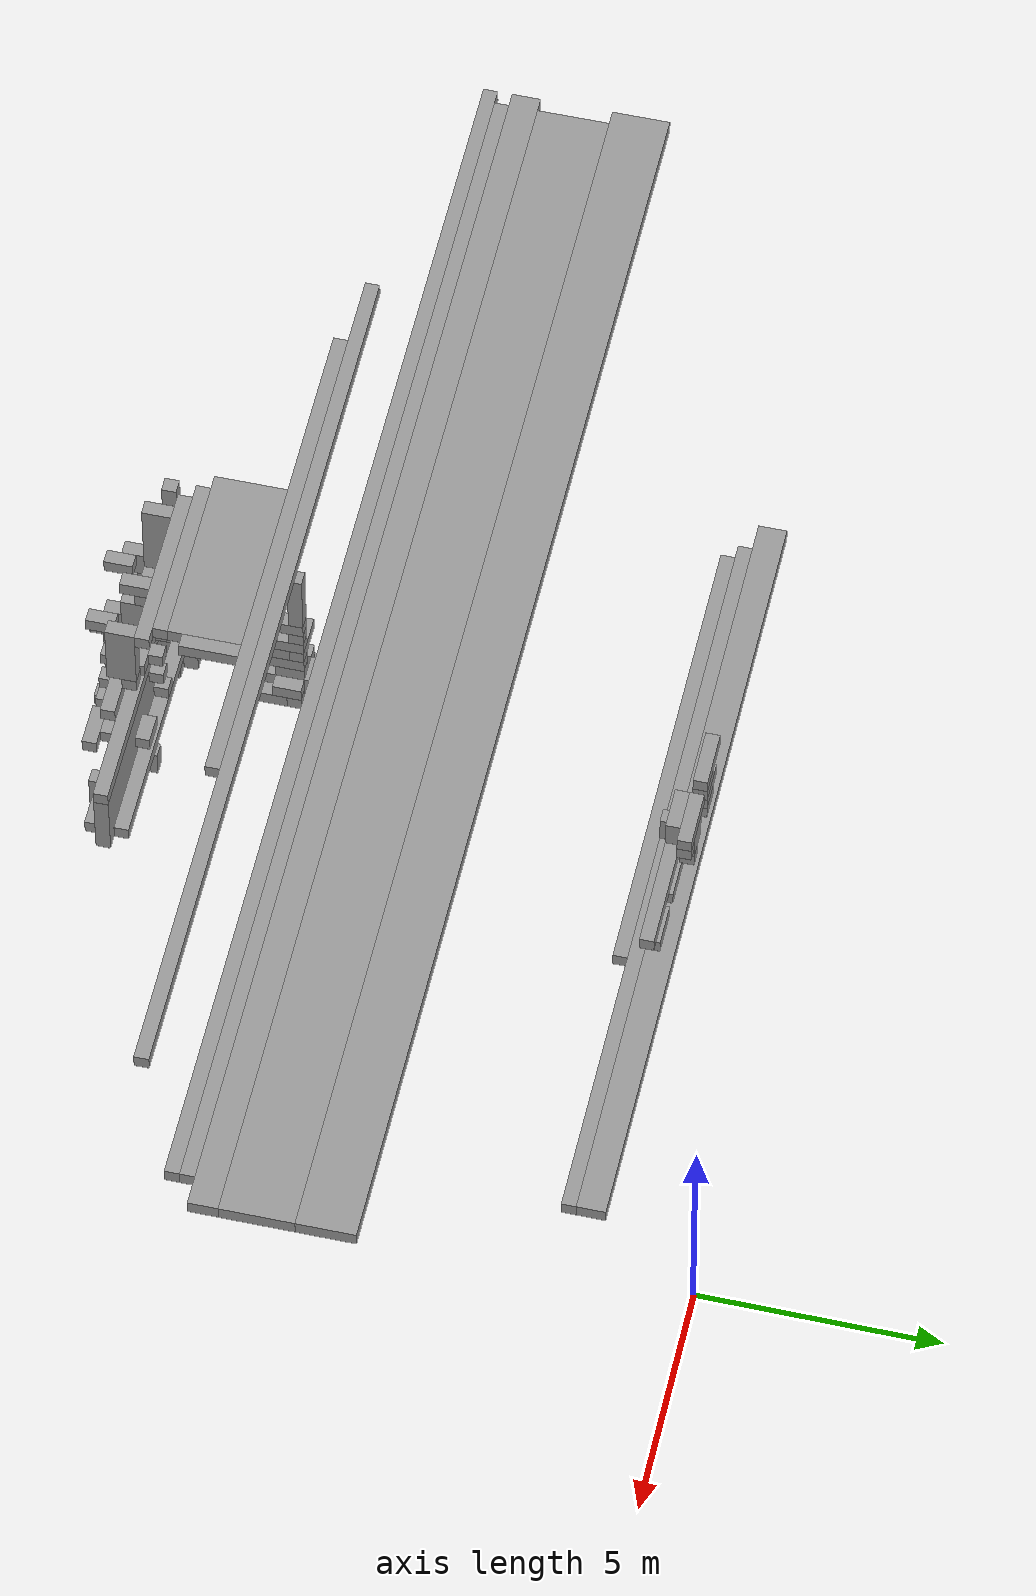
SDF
<sdf version="1.6">
 <world name="bt_world">
  <include><uri>model://sun</uri></include>
  <model name="obstacle_474">
   <static>true</static>
   <pose>-9.9 -9.45 6.45 0 0 0</pose>
   <link name="link">
    <collision name="collision"><geometry><box><size>27.0 0.3 0.3</size></box></geometry></collision>
    <visual name="visual">
     <geometry><box><size>27.0 0.3 0.3</size></box></geometry>
     <material><ambient>0.5 0.5 0.5 1</ambient><diffuse>0.6 0.6 0.6 1</diffuse></material>
    </visual>
   </link>
  </model>
  <model name="obstacle_475">
   <static>true</static>
   <pose>-9.6 -8.7 6.45 0 0 0</pose>
   <link name="link">
    <collision name="collision">
     <geometry><box><size>27.599999999999998 0.6 0.3</size></box></geometry>
    </collision>
    <visual name="visual">
     <geometry><box><size>27.599999999999998 0.6 0.3</size></box></geometry>
     <material><ambient>0.5 0.5 0.5 1</ambient><diffuse>0.6 0.6 0.6 1</diffuse></material>
    </visual>
   </link>
  </model>
  <model name="obstacle_476">
   <static>true</static>
   <pose>-9.6 -6.3 6.45 0 0 0</pose>
   <link name="link">
    <collision name="collision">
     <geometry><box><size>27.599999999999998 1.2 0.3</size></box></geometry>
    </collision>
    <visual name="visual">
     <geometry><box><size>27.599999999999998 1.2 0.3</size></box></geometry>
     <material><ambient>0.5 0.5 0.5 1</ambient><diffuse>0.6 0.6 0.6 1</diffuse></material>
    </visual>
   </link>
  </model>
  <model name="obstacle_508">
   <static>true</static>
   <pose>-9.75 -9.15 6.45 0 0 0</pose>
   <link name="link">
    <collision name="collision"><geometry><box><size>26.7 0.3 0.3</size></box></geometry></collision>
    <visual name="visual">
     <geometry><box><size>26.7 0.3 0.3</size></box></geometry>
     <material><ambient>0.5 0.5 0.5 1</ambient><diffuse>0.6 0.6 0.6 1</diffuse></material>
    </visual>
   </link>
  </model>
  <model name="obstacle_509">
   <static>true</static>
   <pose>-9.45 -7.6499999999999995 6.45 0 0 0</pose>
   <link name="link">
    <collision name="collision"><geometry><box><size>27.3 1.5 0.3</size></box></geometry></collision>
    <visual name="visual">
     <geometry><box><size>27.3 1.5 0.3</size></box></geometry>
     <material><ambient>0.5 0.5 0.5 1</ambient><diffuse>0.6 0.6 0.6 1</diffuse></material>
    </visual>
   </link>
  </model>
  <model name="obstacle_1035">
   <static>true</static>
   <pose>-10.049999999999999 -2.4 -0.15 0 0 0</pose>
   <link name="link">
    <collision name="collision">
     <geometry><box><size>17.099999999999998 0.6 0.3</size></box></geometry>
    </collision>
    <visual name="visual">
     <geometry><box><size>17.099999999999998 0.6 0.3</size></box></geometry>
     <material><ambient>0.5 0.5 0.5 1</ambient><diffuse>0.6 0.6 0.6 1</diffuse></material>
    </visual>
   </link>
  </model>
  <model name="obstacle_1073">
   <static>true</static>
   <pose>-8.4 -10.65 6.45 0 0 0</pose>
   <link name="link">
    <collision name="collision"><geometry><box><size>19.2 0.3 0.3</size></box></geometry></collision>
    <visual name="visual">
     <geometry><box><size>19.2 0.3 0.3</size></box></geometry>
     <material><ambient>0.5 0.5 0.5 1</ambient><diffuse>0.6 0.6 0.6 1</diffuse></material>
    </visual>
   </link>
  </model>
  <model name="obstacle_1074">
   <static>true</static>
   <pose>-9.75 -2.85 -0.15 0 0 0</pose>
   <link name="link">
    <collision name="collision"><geometry><box><size>16.5 0.3 0.3</size></box></geometry></collision>
    <visual name="visual">
     <geometry><box><size>16.5 0.3 0.3</size></box></geometry>
     <material><ambient>0.5 0.5 0.5 1</ambient><diffuse>0.6 0.6 0.6 1</diffuse></material>
    </visual>
   </link>
  </model>
  <model name="obstacle_1093">
   <static>true</static>
   <pose>-12.6 -3.15 -0.15 0 0 0</pose>
   <link name="link">
    <collision name="collision"><geometry><box><size>10.2 0.3 0.3</size></box></geometry></collision>
    <visual name="visual">
     <geometry><box><size>10.2 0.3 0.3</size></box></geometry>
     <material><ambient>0.5 0.5 0.5 1</ambient><diffuse>0.6 0.6 0.6 1</diffuse></material>
    </visual>
   </link>
  </model>
  <model name="obstacle_1207">
   <static>true</static>
   <pose>-11.1 -10.95 6.45 0 0 0</pose>
   <link name="link">
    <collision name="collision">
     <geometry><box><size>10.799999999999999 0.3 0.3</size></box></geometry>
    </collision>
    <visual name="visual">
     <geometry><box><size>10.799999999999999 0.3 0.3</size></box></geometry>
     <material><ambient>0.5 0.5 0.5 1</ambient><diffuse>0.6 0.6 0.6 1</diffuse></material>
    </visual>
   </link>
  </model>
  <model name="obstacle_1505">
   <static>true</static>
   <pose>-13.2 -14.25 1.05 0 0 0</pose>
   <link name="link">
    <collision name="collision"><geometry><box><size>0.6 0.3 0.3</size></box></geometry></collision>
    <visual name="visual">
     <geometry><box><size>0.6 0.3 0.3</size></box></geometry>
     <material><ambient>0.5 0.5 0.5 1</ambient><diffuse>0.6 0.6 0.6 1</diffuse></material>
    </visual>
   </link>
  </model>
  <model name="obstacle_1506">
   <static>true</static>
   <pose>-13.35 -13.95 1.05 0 0 0</pose>
   <link name="link">
    <collision name="collision"><geometry><box><size>0.3 0.3 0.3</size></box></geometry></collision>
    <visual name="visual">
     <geometry><box><size>0.3 0.3 0.3</size></box></geometry>
     <material><ambient>0.5 0.5 0.5 1</ambient><diffuse>0.6 0.6 0.6 1</diffuse></material>
    </visual>
   </link>
  </model>
  <model name="obstacle_1524">
   <static>true</static>
   <pose>-12.75 -14.399999999999999 0.15 0 0 0</pose>
   <link name="link">
    <collision name="collision">
     <geometry><box><size>0.8999999999999999 0.6 0.3</size></box></geometry>
    </collision>
    <visual name="visual">
     <geometry><box><size>0.8999999999999999 0.6 0.3</size></box></geometry>
     <material><ambient>0.5 0.5 0.5 1</ambient><diffuse>0.6 0.6 0.6 1</diffuse></material>
    </visual>
   </link>
  </model>
  <model name="obstacle_1525">
   <static>true</static>
   <pose>-12.9 -14.1 0.44999999999999996 0 0 0</pose>
   <link name="link">
    <collision name="collision"><geometry><box><size>0.6 1.2 0.3</size></box></geometry></collision>
    <visual name="visual">
     <geometry><box><size>0.6 1.2 0.3</size></box></geometry>
     <material><ambient>0.5 0.5 0.5 1</ambient><diffuse>0.6 0.6 0.6 1</diffuse></material>
    </visual>
   </link>
  </model>
  <model name="obstacle_1526">
   <static>true</static>
   <pose>-13.049999999999999 -14.399999999999999 0.75 0 0 0</pose>
   <link name="link">
    <collision name="collision"><geometry><box><size>0.3 0.6 0.3</size></box></geometry></collision>
    <visual name="visual">
     <geometry><box><size>0.3 0.6 0.3</size></box></geometry>
     <material><ambient>0.5 0.5 0.5 1</ambient><diffuse>0.6 0.6 0.6 1</diffuse></material>
    </visual>
   </link>
  </model>
  <model name="obstacle_1527">
   <static>true</static>
   <pose>-13.049999999999999 -14.549999999999999 1.5 0 0 0</pose>
   <link name="link">
    <collision name="collision"><geometry><box><size>0.3 0.3 1.2</size></box></geometry></collision>
    <visual name="visual">
     <geometry><box><size>0.3 0.3 1.2</size></box></geometry>
     <material><ambient>0.5 0.5 0.5 1</ambient><diffuse>0.6 0.6 0.6 1</diffuse></material>
    </visual>
   </link>
  </model>
  <model name="obstacle_1528">
   <static>true</static>
   <pose>-13.049999999999999 -14.399999999999999 2.6999999999999997 0 0 0</pose>
   <link name="link">
    <collision name="collision"><geometry><box><size>0.3 0.6 0.6</size></box></geometry></collision>
    <visual name="visual">
     <geometry><box><size>0.3 0.6 0.6</size></box></geometry>
     <material><ambient>0.5 0.5 0.5 1</ambient><diffuse>0.6 0.6 0.6 1</diffuse></material>
    </visual>
   </link>
  </model>
  <model name="obstacle_1529">
   <static>true</static>
   <pose>-12.75 -14.25 -0.15 0 0 0</pose>
   <link name="link">
    <collision name="collision">
     <geometry><box><size>0.8999999999999999 0.3 0.3</size></box></geometry>
    </collision>
    <visual name="visual">
     <geometry><box><size>0.8999999999999999 0.3 0.3</size></box></geometry>
     <material><ambient>0.5 0.5 0.5 1</ambient><diffuse>0.6 0.6 0.6 1</diffuse></material>
    </visual>
   </link>
  </model>
  <model name="obstacle_1530">
   <static>true</static>
   <pose>-13.049999999999999 -14.25 1.7999999999999998 0 0 0</pose>
   <link name="link">
    <collision name="collision"><geometry><box><size>0.3 0.3 1.2</size></box></geometry></collision>
    <visual name="visual">
     <geometry><box><size>0.3 0.3 1.2</size></box></geometry>
     <material><ambient>0.5 0.5 0.5 1</ambient><diffuse>0.6 0.6 0.6 1</diffuse></material>
    </visual>
   </link>
  </model>
  <model name="obstacle_1531">
   <static>true</static>
   <pose>-12.9 -13.799999999999999 0.0 0 0 0</pose>
   <link name="link">
    <collision name="collision"><geometry><box><size>0.6 0.6 0.6</size></box></geometry></collision>
    <visual name="visual">
     <geometry><box><size>0.6 0.6 0.6</size></box></geometry>
     <material><ambient>0.5 0.5 0.5 1</ambient><diffuse>0.6 0.6 0.6 1</diffuse></material>
    </visual>
   </link>
  </model>
  <model name="obstacle_1532">
   <static>true</static>
   <pose>-13.049999999999999 -13.65 2.25 0 0 0</pose>
   <link name="link">
    <collision name="collision">
     <geometry><box><size>0.3 0.8999999999999999 0.3</size></box></geometry>
    </collision>
    <visual name="visual">
     <geometry><box><size>0.3 0.8999999999999999 0.3</size></box></geometry>
     <material><ambient>0.5 0.5 0.5 1</ambient><diffuse>0.6 0.6 0.6 1</diffuse></material>
    </visual>
   </link>
  </model>
  <model name="obstacle_1533">
   <static>true</static>
   <pose>-12.9 -13.65 -0.44999999999999996 0 0 0</pose>
   <link name="link">
    <collision name="collision"><geometry><box><size>0.6 0.3 0.3</size></box></geometry></collision>
    <visual name="visual">
     <geometry><box><size>0.6 0.3 0.3</size></box></geometry>
     <material><ambient>0.5 0.5 0.5 1</ambient><diffuse>0.6 0.6 0.6 1</diffuse></material>
    </visual>
   </link>
  </model>
  <model name="obstacle_1534">
   <static>true</static>
   <pose>-12.9 -13.65 0.75 0 0 0</pose>
   <link name="link">
    <collision name="collision"><geometry><box><size>0.6 0.3 0.3</size></box></geometry></collision>
    <visual name="visual">
     <geometry><box><size>0.6 0.3 0.3</size></box></geometry>
     <material><ambient>0.5 0.5 0.5 1</ambient><diffuse>0.6 0.6 0.6 1</diffuse></material>
    </visual>
   </link>
  </model>
  <model name="obstacle_1535">
   <static>true</static>
   <pose>-13.049999999999999 -13.5 4.6499999999999995 0 0 0</pose>
   <link name="link">
    <collision name="collision"><geometry><box><size>0.3 0.6 0.3</size></box></geometry></collision>
    <visual name="visual">
     <geometry><box><size>0.3 0.6 0.3</size></box></geometry>
     <material><ambient>0.5 0.5 0.5 1</ambient><diffuse>0.6 0.6 0.6 1</diffuse></material>
    </visual>
   </link>
  </model>
  <model name="obstacle_1536">
   <static>true</static>
   <pose>-13.049999999999999 -13.65 5.1 0 0 0</pose>
   <link name="link">
    <collision name="collision"><geometry><box><size>0.3 0.3 0.6</size></box></geometry></collision>
    <visual name="visual">
     <geometry><box><size>0.3 0.3 0.6</size></box></geometry>
     <material><ambient>0.5 0.5 0.5 1</ambient><diffuse>0.6 0.6 0.6 1</diffuse></material>
    </visual>
   </link>
  </model>
  <model name="obstacle_1537">
   <static>true</static>
   <pose>-13.049999999999999 -13.35 0.75 0 0 0</pose>
   <link name="link">
    <collision name="collision">
     <geometry><box><size>0.3 0.3 2.6999999999999997</size></box></geometry>
    </collision>
    <visual name="visual">
     <geometry><box><size>0.3 0.3 2.6999999999999997</size></box></geometry>
     <material><ambient>0.5 0.5 0.5 1</ambient><diffuse>0.6 0.6 0.6 1</diffuse></material>
    </visual>
   </link>
  </model>
  <model name="obstacle_1538">
   <static>true</static>
   <pose>-13.049999999999999 -13.35 2.6999999999999997 0 0 0</pose>
   <link name="link">
    <collision name="collision"><geometry><box><size>0.3 0.3 0.6</size></box></geometry></collision>
    <visual name="visual">
     <geometry><box><size>0.3 0.3 0.6</size></box></geometry>
     <material><ambient>0.5 0.5 0.5 1</ambient><diffuse>0.6 0.6 0.6 1</diffuse></material>
    </visual>
   </link>
  </model>
  <model name="obstacle_1539">
   <static>true</static>
   <pose>-9.75 -13.049999999999999 2.85 0 0 0</pose>
   <link name="link">
    <collision name="collision">
     <geometry><box><size>6.8999999999999995 0.3 0.3</size></box></geometry>
    </collision>
    <visual name="visual">
     <geometry><box><size>6.8999999999999995 0.3 0.3</size></box></geometry>
     <material><ambient>0.5 0.5 0.5 1</ambient><diffuse>0.6 0.6 0.6 1</diffuse></material>
    </visual>
   </link>
  </model>
  <model name="obstacle_1540">
   <static>true</static>
   <pose>-13.049999999999999 -13.049999999999999 3.75 0 0 0</pose>
   <link name="link">
    <collision name="collision"><geometry><box><size>0.3 0.3 1.5</size></box></geometry></collision>
    <visual name="visual">
     <geometry><box><size>0.3 0.3 1.5</size></box></geometry>
     <material><ambient>0.5 0.5 0.5 1</ambient><diffuse>0.6 0.6 0.6 1</diffuse></material>
    </visual>
   </link>
  </model>
  <model name="obstacle_1541">
   <static>true</static>
   <pose>-12.6 -10.95 0.15 0 0 0</pose>
   <link name="link">
    <collision name="collision"><geometry><box><size>1.2 0.3 0.3</size></box></geometry></collision>
    <visual name="visual">
     <geometry><box><size>1.2 0.3 0.3</size></box></geometry>
     <material><ambient>0.5 0.5 0.5 1</ambient><diffuse>0.6 0.6 0.6 1</diffuse></material>
    </visual>
   </link>
  </model>
  <model name="obstacle_1542">
   <static>true</static>
   <pose>-13.049999999999999 -10.95 0.44999999999999996 0 0 0</pose>
   <link name="link">
    <collision name="collision"><geometry><box><size>0.3 0.3 0.3</size></box></geometry></collision>
    <visual name="visual">
     <geometry><box><size>0.3 0.3 0.3</size></box></geometry>
     <material><ambient>0.5 0.5 0.5 1</ambient><diffuse>0.6 0.6 0.6 1</diffuse></material>
    </visual>
   </link>
  </model>
  <model name="obstacle_1543">
   <static>true</static>
   <pose>-12.75 -10.95 1.3499999999999999 0 0 0</pose>
   <link name="link">
    <collision name="collision">
     <geometry><box><size>0.8999999999999999 0.3 0.3</size></box></geometry>
    </collision>
    <visual name="visual">
     <geometry><box><size>0.8999999999999999 0.3 0.3</size></box></geometry>
     <material><ambient>0.5 0.5 0.5 1</ambient><diffuse>0.6 0.6 0.6 1</diffuse></material>
    </visual>
   </link>
  </model>
  <model name="obstacle_1552">
   <static>true</static>
   <pose>-12.6 -14.85 0.6 0 0 0</pose>
   <link name="link">
    <collision name="collision"><geometry><box><size>0.6 0.3 1.2</size></box></geometry></collision>
    <visual name="visual">
     <geometry><box><size>0.6 0.3 1.2</size></box></geometry>
     <material><ambient>0.5 0.5 0.5 1</ambient><diffuse>0.6 0.6 0.6 1</diffuse></material>
    </visual>
   </link>
  </model>
  <model name="obstacle_1553">
   <static>true</static>
   <pose>-12.75 -14.7 2.85 0 0 0</pose>
   <link name="link">
    <collision name="collision"><geometry><box><size>0.3 0.6 0.3</size></box></geometry></collision>
    <visual name="visual">
     <geometry><box><size>0.3 0.6 0.3</size></box></geometry>
     <material><ambient>0.5 0.5 0.5 1</ambient><diffuse>0.6 0.6 0.6 1</diffuse></material>
    </visual>
   </link>
  </model>
  <model name="obstacle_1554">
   <static>true</static>
   <pose>-12.0 -14.549999999999999 -0.15 0 0 0</pose>
   <link name="link">
    <collision name="collision">
     <geometry><box><size>1.7999999999999998 0.3 0.3</size></box></geometry>
    </collision>
    <visual name="visual">
     <geometry><box><size>1.7999999999999998 0.3 0.3</size></box></geometry>
     <material><ambient>0.5 0.5 0.5 1</ambient><diffuse>0.6 0.6 0.6 1</diffuse></material>
    </visual>
   </link>
  </model>
  <model name="obstacle_1555">
   <static>true</static>
   <pose>-9.45 -13.35 3.4499999999999997 0 0 0</pose>
   <link name="link">
    <collision name="collision">
     <geometry><box><size>6.8999999999999995 0.3 1.5</size></box></geometry>
    </collision>
    <visual name="visual">
     <geometry><box><size>6.8999999999999995 0.3 1.5</size></box></geometry>
     <material><ambient>0.5 0.5 0.5 1</ambient><diffuse>0.6 0.6 0.6 1</diffuse></material>
    </visual>
   </link>
  </model>
  <model name="obstacle_1556">
   <static>true</static>
   <pose>-12.75 -13.35 4.35 0 0 0</pose>
   <link name="link">
    <collision name="collision"><geometry><box><size>0.3 0.3 0.3</size></box></geometry></collision>
    <visual name="visual">
     <geometry><box><size>0.3 0.3 0.3</size></box></geometry>
     <material><ambient>0.5 0.5 0.5 1</ambient><diffuse>0.6 0.6 0.6 1</diffuse></material>
    </visual>
   </link>
  </model>
  <model name="obstacle_1557">
   <static>true</static>
   <pose>-12.75 -13.049999999999999 3.4499999999999997 0 0 0</pose>
   <link name="link">
    <collision name="collision"><geometry><box><size>0.3 0.3 0.3</size></box></geometry></collision>
    <visual name="visual">
     <geometry><box><size>0.3 0.3 0.3</size></box></geometry>
     <material><ambient>0.5 0.5 0.5 1</ambient><diffuse>0.6 0.6 0.6 1</diffuse></material>
    </visual>
   </link>
  </model>
  <model name="obstacle_1558">
   <static>true</static>
   <pose>-12.75 -13.049999999999999 4.05 0 0 0</pose>
   <link name="link">
    <collision name="collision"><geometry><box><size>0.3 0.3 0.3</size></box></geometry></collision>
    <visual name="visual">
     <geometry><box><size>0.3 0.3 0.3</size></box></geometry>
     <material><ambient>0.5 0.5 0.5 1</ambient><diffuse>0.6 0.6 0.6 1</diffuse></material>
    </visual>
   </link>
  </model>
  <model name="obstacle_1559">
   <static>true</static>
   <pose>-12.6 -10.65 0.3 0 0 0</pose>
   <link name="link">
    <collision name="collision"><geometry><box><size>0.6 0.3 0.6</size></box></geometry></collision>
    <visual name="visual">
     <geometry><box><size>0.6 0.3 0.6</size></box></geometry>
     <material><ambient>0.5 0.5 0.5 1</ambient><diffuse>0.6 0.6 0.6 1</diffuse></material>
    </visual>
   </link>
  </model>
  <model name="obstacle_1564">
   <static>true</static>
   <pose>-12.45 -15.149999999999999 1.05 0 0 0</pose>
   <link name="link">
    <collision name="collision"><geometry><box><size>0.3 0.3 0.3</size></box></geometry></collision>
    <visual name="visual">
     <geometry><box><size>0.3 0.3 0.3</size></box></geometry>
     <material><ambient>0.5 0.5 0.5 1</ambient><diffuse>0.6 0.6 0.6 1</diffuse></material>
    </visual>
   </link>
  </model>
  <model name="obstacle_1565">
   <static>true</static>
   <pose>-12.45 -14.85 -0.15 0 0 0</pose>
   <link name="link">
    <collision name="collision"><geometry><box><size>0.3 0.3 0.3</size></box></geometry></collision>
    <visual name="visual">
     <geometry><box><size>0.3 0.3 0.3</size></box></geometry>
     <material><ambient>0.5 0.5 0.5 1</ambient><diffuse>0.6 0.6 0.6 1</diffuse></material>
    </visual>
   </link>
  </model>
  <model name="obstacle_1566">
   <static>true</static>
   <pose>-12.45 -14.85 1.3499999999999999 0 0 0</pose>
   <link name="link">
    <collision name="collision"><geometry><box><size>0.3 0.3 0.3</size></box></geometry></collision>
    <visual name="visual">
     <geometry><box><size>0.3 0.3 0.3</size></box></geometry>
     <material><ambient>0.5 0.5 0.5 1</ambient><diffuse>0.6 0.6 0.6 1</diffuse></material>
    </visual>
   </link>
  </model>
  <model name="obstacle_1567">
   <static>true</static>
   <pose>-9.45 -13.65 2.85 0 0 0</pose>
   <link name="link">
    <collision name="collision"><geometry><box><size>6.3 0.3 0.3</size></box></geometry></collision>
    <visual name="visual">
     <geometry><box><size>6.3 0.3 0.3</size></box></geometry>
     <material><ambient>0.5 0.5 0.5 1</ambient><diffuse>0.6 0.6 0.6 1</diffuse></material>
    </visual>
   </link>
  </model>
  <model name="obstacle_1568">
   <static>true</static>
   <pose>-10.65 -11.85 6.45 0 0 0</pose>
   <link name="link">
    <collision name="collision"><geometry><box><size>3.9 1.5 0.3</size></box></geometry></collision>
    <visual name="visual">
     <geometry><box><size>3.9 1.5 0.3</size></box></geometry>
     <material><ambient>0.5 0.5 0.5 1</ambient><diffuse>0.6 0.6 0.6 1</diffuse></material>
    </visual>
   </link>
  </model>
  <model name="obstacle_1569">
   <static>true</static>
   <pose>-12.45 -11.7 0.15 0 0 0</pose>
   <link name="link">
    <collision name="collision"><geometry><box><size>0.3 1.2 0.3</size></box></geometry></collision>
    <visual name="visual">
     <geometry><box><size>0.3 1.2 0.3</size></box></geometry>
     <material><ambient>0.5 0.5 0.5 1</ambient><diffuse>0.6 0.6 0.6 1</diffuse></material>
    </visual>
   </link>
  </model>
  <model name="obstacle_1570">
   <static>true</static>
   <pose>-12.45 -11.25 0.44999999999999996 0 0 0</pose>
   <link name="link">
    <collision name="collision">
     <geometry><box><size>0.3 0.8999999999999999 0.3</size></box></geometry>
    </collision>
    <visual name="visual">
     <geometry><box><size>0.3 0.8999999999999999 0.3</size></box></geometry>
     <material><ambient>0.5 0.5 0.5 1</ambient><diffuse>0.6 0.6 0.6 1</diffuse></material>
    </visual>
   </link>
  </model>
  <model name="obstacle_1571">
   <static>true</static>
   <pose>-12.45 -11.25 1.05 0 0 0</pose>
   <link name="link">
    <collision name="collision">
     <geometry><box><size>0.3 0.8999999999999999 0.3</size></box></geometry>
    </collision>
    <visual name="visual">
     <geometry><box><size>0.3 0.8999999999999999 0.3</size></box></geometry>
     <material><ambient>0.5 0.5 0.5 1</ambient><diffuse>0.6 0.6 0.6 1</diffuse></material>
    </visual>
   </link>
  </model>
  <model name="obstacle_1572">
   <static>true</static>
   <pose>-12.45 -11.4 1.3499999999999999 0 0 0</pose>
   <link name="link">
    <collision name="collision"><geometry><box><size>0.3 0.6 0.3</size></box></geometry></collision>
    <visual name="visual">
     <geometry><box><size>0.3 0.6 0.3</size></box></geometry>
     <material><ambient>0.5 0.5 0.5 1</ambient><diffuse>0.6 0.6 0.6 1</diffuse></material>
    </visual>
   </link>
  </model>
  <model name="obstacle_1573">
   <static>true</static>
   <pose>-12.45 -11.1 0.75 0 0 0</pose>
   <link name="link">
    <collision name="collision"><geometry><box><size>0.3 0.6 0.3</size></box></geometry></collision>
    <visual name="visual">
     <geometry><box><size>0.3 0.6 0.3</size></box></geometry>
     <material><ambient>0.5 0.5 0.5 1</ambient><diffuse>0.6 0.6 0.6 1</diffuse></material>
    </visual>
   </link>
  </model>
  <model name="obstacle_1574">
   <static>true</static>
   <pose>-12.45 -11.1 1.65 0 0 0</pose>
   <link name="link">
    <collision name="collision"><geometry><box><size>0.3 0.6 0.3</size></box></geometry></collision>
    <visual name="visual">
     <geometry><box><size>0.3 0.6 0.3</size></box></geometry>
     <material><ambient>0.5 0.5 0.5 1</ambient><diffuse>0.6 0.6 0.6 1</diffuse></material>
    </visual>
   </link>
  </model>
  <model name="obstacle_1575">
   <static>true</static>
   <pose>-12.45 -11.1 2.25 0 0 0</pose>
   <link name="link">
    <collision name="collision"><geometry><box><size>0.3 0.6 0.3</size></box></geometry></collision>
    <visual name="visual">
     <geometry><box><size>0.3 0.6 0.3</size></box></geometry>
     <material><ambient>0.5 0.5 0.5 1</ambient><diffuse>0.6 0.6 0.6 1</diffuse></material>
    </visual>
   </link>
  </model>
  <model name="obstacle_1576">
   <static>true</static>
   <pose>-12.45 -10.95 1.95 0 0 0</pose>
   <link name="link">
    <collision name="collision"><geometry><box><size>0.3 0.3 0.3</size></box></geometry></collision>
    <visual name="visual">
     <geometry><box><size>0.3 0.3 0.3</size></box></geometry>
     <material><ambient>0.5 0.5 0.5 1</ambient><diffuse>0.6 0.6 0.6 1</diffuse></material>
    </visual>
   </link>
  </model>
  <model name="obstacle_1577">
   <static>true</static>
   <pose>-12.45 -10.95 3.15 0 0 0</pose>
   <link name="link">
    <collision name="collision"><geometry><box><size>0.3 0.3 1.5</size></box></geometry></collision>
    <visual name="visual">
     <geometry><box><size>0.3 0.3 1.5</size></box></geometry>
     <material><ambient>0.5 0.5 0.5 1</ambient><diffuse>0.6 0.6 0.6 1</diffuse></material>
    </visual>
   </link>
  </model>
  <model name="obstacle_1587">
   <static>true</static>
   <pose>-12.15 -14.85 0.44999999999999996 0 0 0</pose>
   <link name="link">
    <collision name="collision"><geometry><box><size>0.3 0.3 0.3</size></box></geometry></collision>
    <visual name="visual">
     <geometry><box><size>0.3 0.3 0.3</size></box></geometry>
     <material><ambient>0.5 0.5 0.5 1</ambient><diffuse>0.6 0.6 0.6 1</diffuse></material>
    </visual>
   </link>
  </model>
  <model name="obstacle_1588">
   <static>true</static>
   <pose>-10.5 -12.75 6.45 0 0 0</pose>
   <link name="link">
    <collision name="collision">
     <geometry><box><size>3.5999999999999996 0.3 0.3</size></box></geometry>
    </collision>
    <visual name="visual">
     <geometry><box><size>3.5999999999999996 0.3 0.3</size></box></geometry>
     <material><ambient>0.5 0.5 0.5 1</ambient><diffuse>0.6 0.6 0.6 1</diffuse></material>
    </visual>
   </link>
  </model>
  <model name="obstacle_1589">
   <static>true</static>
   <pose>-12.15 -11.549999999999999 0.15 0 0 0</pose>
   <link name="link">
    <collision name="collision">
     <geometry><box><size>0.3 0.8999999999999999 0.3</size></box></geometry>
    </collision>
    <visual name="visual">
     <geometry><box><size>0.3 0.8999999999999999 0.3</size></box></geometry>
     <material><ambient>0.5 0.5 0.5 1</ambient><diffuse>0.6 0.6 0.6 1</diffuse></material>
    </visual>
   </link>
  </model>
  <model name="obstacle_1590">
   <static>true</static>
   <pose>-12.15 -11.1 0.44999999999999996 0 0 0</pose>
   <link name="link">
    <collision name="collision"><geometry><box><size>0.3 0.6 0.3</size></box></geometry></collision>
    <visual name="visual">
     <geometry><box><size>0.3 0.6 0.3</size></box></geometry>
     <material><ambient>0.5 0.5 0.5 1</ambient><diffuse>0.6 0.6 0.6 1</diffuse></material>
    </visual>
   </link>
  </model>
  <model name="obstacle_1606">
   <static>true</static>
   <pose>-11.549999999999999 -14.25 -0.15 0 0 0</pose>
   <link name="link">
    <collision name="collision">
     <geometry><box><size>0.8999999999999999 0.3 0.3</size></box></geometry>
    </collision>
    <visual name="visual">
     <geometry><box><size>0.8999999999999999 0.3 0.3</size></box></geometry>
     <material><ambient>0.5 0.5 0.5 1</ambient><diffuse>0.6 0.6 0.6 1</diffuse></material>
    </visual>
   </link>
  </model>
  <model name="obstacle_1607">
   <static>true</static>
   <pose>-9.0 -13.35 4.35 0 0 0</pose>
   <link name="link">
    <collision name="collision"><geometry><box><size>6.0 0.3 0.3</size></box></geometry></collision>
    <visual name="visual">
     <geometry><box><size>6.0 0.3 0.3</size></box></geometry>
     <material><ambient>0.5 0.5 0.5 1</ambient><diffuse>0.6 0.6 0.6 1</diffuse></material>
    </visual>
   </link>
  </model>
  <model name="obstacle_1608">
   <static>true</static>
   <pose>-10.2 -13.049999999999999 6.45 0 0 0</pose>
   <link name="link">
    <collision name="collision">
     <geometry><box><size>3.5999999999999996 0.3 0.3</size></box></geometry>
    </collision>
    <visual name="visual">
     <geometry><box><size>3.5999999999999996 0.3 0.3</size></box></geometry>
     <material><ambient>0.5 0.5 0.5 1</ambient><diffuse>0.6 0.6 0.6 1</diffuse></material>
    </visual>
   </link>
  </model>
  <model name="obstacle_1609">
   <static>true</static>
   <pose>-11.4 -2.25 1.65 0 0 0</pose>
   <link name="link">
    <collision name="collision"><geometry><box><size>1.2 0.3 0.3</size></box></geometry></collision>
    <visual name="visual">
     <geometry><box><size>1.2 0.3 0.3</size></box></geometry>
     <material><ambient>0.5 0.5 0.5 1</ambient><diffuse>0.6 0.6 0.6 1</diffuse></material>
    </visual>
   </link>
  </model>
  <model name="obstacle_1627">
   <static>true</static>
   <pose>-11.549999999999999 -14.85 -0.15 0 0 0</pose>
   <link name="link">
    <collision name="collision"><geometry><box><size>0.3 0.3 0.3</size></box></geometry></collision>
    <visual name="visual">
     <geometry><box><size>0.3 0.3 0.3</size></box></geometry>
     <material><ambient>0.5 0.5 0.5 1</ambient><diffuse>0.6 0.6 0.6 1</diffuse></material>
    </visual>
   </link>
  </model>
  <model name="obstacle_1628">
   <static>true</static>
   <pose>-11.549999999999999 -14.399999999999999 -0.44999999999999996 0 0 0</pose>
   <link name="link">
    <collision name="collision"><geometry><box><size>0.3 0.6 0.3</size></box></geometry></collision>
    <visual name="visual">
     <geometry><box><size>0.3 0.6 0.3</size></box></geometry>
     <material><ambient>0.5 0.5 0.5 1</ambient><diffuse>0.6 0.6 0.6 1</diffuse></material>
    </visual>
   </link>
  </model>
  <model name="obstacle_1629">
   <static>true</static>
   <pose>-11.4 -14.399999999999999 0.15 0 0 0</pose>
   <link name="link">
    <collision name="collision"><geometry><box><size>0.6 0.6 0.3</size></box></geometry></collision>
    <visual name="visual">
     <geometry><box><size>0.6 0.6 0.3</size></box></geometry>
     <material><ambient>0.5 0.5 0.5 1</ambient><diffuse>0.6 0.6 0.6 1</diffuse></material>
    </visual>
   </link>
  </model>
  <model name="obstacle_1630">
   <static>true</static>
   <pose>-11.549999999999999 -14.399999999999999 1.65 0 0 0</pose>
   <link name="link">
    <collision name="collision">
     <geometry><box><size>0.3 0.6 2.6999999999999997</size></box></geometry>
    </collision>
    <visual name="visual">
     <geometry><box><size>0.3 0.6 2.6999999999999997</size></box></geometry>
     <material><ambient>0.5 0.5 0.5 1</ambient><diffuse>0.6 0.6 0.6 1</diffuse></material>
    </visual>
   </link>
  </model>
  <model name="obstacle_1631">
   <static>true</static>
   <pose>-11.549999999999999 -13.5 5.7 0 0 0</pose>
   <link name="link">
    <collision name="collision">
     <geometry><box><size>0.3 0.6 1.7999999999999998</size></box></geometry>
    </collision>
    <visual name="visual">
     <geometry><box><size>0.3 0.6 1.7999999999999998</size></box></geometry>
     <material><ambient>0.5 0.5 0.5 1</ambient><diffuse>0.6 0.6 0.6 1</diffuse></material>
    </visual>
   </link>
  </model>
  <model name="obstacle_1632">
   <static>true</static>
   <pose>-11.549999999999999 -13.35 4.6499999999999995 0 0 0</pose>
   <link name="link">
    <collision name="collision"><geometry><box><size>0.3 0.3 0.3</size></box></geometry></collision>
    <visual name="visual">
     <geometry><box><size>0.3 0.3 0.3</size></box></geometry>
     <material><ambient>0.5 0.5 0.5 1</ambient><diffuse>0.6 0.6 0.6 1</diffuse></material>
    </visual>
   </link>
  </model>
  <model name="obstacle_1634">
   <static>true</static>
   <pose>-11.25 -2.25 1.05 0 0 0</pose>
   <link name="link">
    <collision name="collision">
     <geometry><box><size>0.8999999999999999 0.3 0.3</size></box></geometry>
    </collision>
    <visual name="visual">
     <geometry><box><size>0.8999999999999999 0.3 0.3</size></box></geometry>
     <material><ambient>0.5 0.5 0.5 1</ambient><diffuse>0.6 0.6 0.6 1</diffuse></material>
    </visual>
   </link>
  </model>
  <model name="obstacle_1646">
   <static>true</static>
   <pose>-11.25 -14.7 2.85 0 0 0</pose>
   <link name="link">
    <collision name="collision"><geometry><box><size>0.3 0.6 0.3</size></box></geometry></collision>
    <visual name="visual">
     <geometry><box><size>0.3 0.6 0.3</size></box></geometry>
     <material><ambient>0.5 0.5 0.5 1</ambient><diffuse>0.6 0.6 0.6 1</diffuse></material>
    </visual>
   </link>
  </model>
  <model name="obstacle_1647">
   <static>true</static>
   <pose>-11.25 -13.65 4.6499999999999995 0 0 0</pose>
   <link name="link">
    <collision name="collision"><geometry><box><size>0.3 0.3 0.3</size></box></geometry></collision>
    <visual name="visual">
     <geometry><box><size>0.3 0.3 0.3</size></box></geometry>
     <material><ambient>0.5 0.5 0.5 1</ambient><diffuse>0.6 0.6 0.6 1</diffuse></material>
    </visual>
   </link>
  </model>
  <model name="obstacle_1649">
   <static>true</static>
   <pose>-11.1 -2.25 0.75 0 0 0</pose>
   <link name="link">
    <collision name="collision"><geometry><box><size>0.6 0.3 0.3</size></box></geometry></collision>
    <visual name="visual">
     <geometry><box><size>0.6 0.3 0.3</size></box></geometry>
     <material><ambient>0.5 0.5 0.5 1</ambient><diffuse>0.6 0.6 0.6 1</diffuse></material>
    </visual>
   </link>
  </model>
  <model name="obstacle_1650">
   <static>true</static>
   <pose>-11.1 -2.25 1.3499999999999999 0 0 0</pose>
   <link name="link">
    <collision name="collision"><geometry><box><size>0.6 0.3 0.3</size></box></geometry></collision>
    <visual name="visual">
     <geometry><box><size>0.6 0.3 0.3</size></box></geometry>
     <material><ambient>0.5 0.5 0.5 1</ambient><diffuse>0.6 0.6 0.6 1</diffuse></material>
    </visual>
   </link>
  </model>
  <model name="obstacle_1656">
   <static>true</static>
   <pose>-10.95 -14.399999999999999 0.8999999999999999 0 0 0</pose>
   <link name="link">
    <collision name="collision"><geometry><box><size>0.3 0.6 1.2</size></box></geometry></collision>
    <visual name="visual">
     <geometry><box><size>0.3 0.6 1.2</size></box></geometry>
     <material><ambient>0.5 0.5 0.5 1</ambient><diffuse>0.6 0.6 0.6 1</diffuse></material>
    </visual>
   </link>
  </model>
  <model name="obstacle_1668">
   <static>true</static>
   <pose>-10.65 -14.549999999999999 1.05 0 0 0</pose>
   <link name="link">
    <collision name="collision"><geometry><box><size>0.3 0.3 0.3</size></box></geometry></collision>
    <visual name="visual">
     <geometry><box><size>0.3 0.3 0.3</size></box></geometry>
     <material><ambient>0.5 0.5 0.5 1</ambient><diffuse>0.6 0.6 0.6 1</diffuse></material>
    </visual>
   </link>
  </model>
  <model name="obstacle_1669">
   <static>true</static>
   <pose>-9.9 -13.35 4.6499999999999995 0 0 0</pose>
   <link name="link">
    <collision name="collision">
     <geometry><box><size>1.7999999999999998 0.3 0.3</size></box></geometry>
    </collision>
    <visual name="visual">
     <geometry><box><size>1.7999999999999998 0.3 0.3</size></box></geometry>
     <material><ambient>0.5 0.5 0.5 1</ambient><diffuse>0.6 0.6 0.6 1</diffuse></material>
    </visual>
   </link>
  </model>
  <model name="obstacle_1671">
   <static>true</static>
   <pose>-10.65 -2.6999999999999997 0.3 0 0 0</pose>
   <link name="link">
    <collision name="collision"><geometry><box><size>0.3 0.6 0.6</size></box></geometry></collision>
    <visual name="visual">
     <geometry><box><size>0.3 0.6 0.6</size></box></geometry>
     <material><ambient>0.5 0.5 0.5 1</ambient><diffuse>0.6 0.6 0.6 1</diffuse></material>
    </visual>
   </link>
  </model>
  <model name="obstacle_1673">
   <static>true</static>
   <pose>-9.15 -13.65 4.6499999999999995 0 0 0</pose>
   <link name="link">
    <collision name="collision">
     <geometry><box><size>2.6999999999999997 0.3 0.3</size></box></geometry>
    </collision>
    <visual name="visual">
     <geometry><box><size>2.6999999999999997 0.3 0.3</size></box></geometry>
     <material><ambient>0.5 0.5 0.5 1</ambient><diffuse>0.6 0.6 0.6 1</diffuse></material>
    </visual>
   </link>
  </model>
  <model name="obstacle_1674">
   <static>true</static>
   <pose>-10.2 -13.049999999999999 4.6499999999999995 0 0 0</pose>
   <link name="link">
    <collision name="collision"><geometry><box><size>0.6 0.3 0.3</size></box></geometry></collision>
    <visual name="visual">
     <geometry><box><size>0.6 0.3 0.3</size></box></geometry>
     <material><ambient>0.5 0.5 0.5 1</ambient><diffuse>0.6 0.6 0.6 1</diffuse></material>
    </visual>
   </link>
  </model>
  <model name="obstacle_1676">
   <static>true</static>
   <pose>-10.049999999999999 -2.55 1.5 0 0 0</pose>
   <link name="link">
    <collision name="collision">
     <geometry><box><size>0.8999999999999999 0.3 0.6</size></box></geometry>
    </collision>
    <visual name="visual">
     <geometry><box><size>0.8999999999999999 0.3 0.6</size></box></geometry>
     <material><ambient>0.5 0.5 0.5 1</ambient><diffuse>0.6 0.6 0.6 1</diffuse></material>
    </visual>
   </link>
  </model>
  <model name="obstacle_1677">
   <static>true</static>
   <pose>-9.9 -2.25 1.65 0 0 0</pose>
   <link name="link">
    <collision name="collision"><geometry><box><size>1.2 0.3 0.3</size></box></geometry></collision>
    <visual name="visual">
     <geometry><box><size>1.2 0.3 0.3</size></box></geometry>
     <material><ambient>0.5 0.5 0.5 1</ambient><diffuse>0.6 0.6 0.6 1</diffuse></material>
    </visual>
   </link>
  </model>
  <model name="obstacle_1682">
   <static>true</static>
   <pose>-9.6 -2.55 0.15 0 0 0</pose>
   <link name="link">
    <collision name="collision"><geometry><box><size>1.2 0.3 0.3</size></box></geometry></collision>
    <visual name="visual">
     <geometry><box><size>1.2 0.3 0.3</size></box></geometry>
     <material><ambient>0.5 0.5 0.5 1</ambient><diffuse>0.6 0.6 0.6 1</diffuse></material>
    </visual>
   </link>
  </model>
  <model name="obstacle_1683">
   <static>true</static>
   <pose>-9.9 -2.25 1.2 0 0 0</pose>
   <link name="link">
    <collision name="collision"><geometry><box><size>0.6 0.3 0.6</size></box></geometry></collision>
    <visual name="visual">
     <geometry><box><size>0.6 0.3 0.6</size></box></geometry>
     <material><ambient>0.5 0.5 0.5 1</ambient><diffuse>0.6 0.6 0.6 1</diffuse></material>
    </visual>
   </link>
  </model>
  <model name="obstacle_1686">
   <static>true</static>
   <pose>-9.75 -13.5 5.3999999999999995 0 0 0</pose>
   <link name="link">
    <collision name="collision"><geometry><box><size>0.3 0.6 1.2</size></box></geometry></collision>
    <visual name="visual">
     <geometry><box><size>0.3 0.6 1.2</size></box></geometry>
     <material><ambient>0.5 0.5 0.5 1</ambient><diffuse>0.6 0.6 0.6 1</diffuse></material>
    </visual>
   </link>
  </model>
  <model name="obstacle_1687">
   <static>true</static>
   <pose>-9.75 -13.5 6.45 0 0 0</pose>
   <link name="link">
    <collision name="collision"><geometry><box><size>0.3 0.6 0.3</size></box></geometry></collision>
    <visual name="visual">
     <geometry><box><size>0.3 0.6 0.3</size></box></geometry>
     <material><ambient>0.5 0.5 0.5 1</ambient><diffuse>0.6 0.6 0.6 1</diffuse></material>
    </visual>
   </link>
  </model>
  <model name="obstacle_1688">
   <static>true</static>
   <pose>-9.75 -13.35 0.6 0 0 0</pose>
   <link name="link">
    <collision name="collision"><geometry><box><size>0.3 0.3 0.6</size></box></geometry></collision>
    <visual name="visual">
     <geometry><box><size>0.3 0.3 0.6</size></box></geometry>
     <material><ambient>0.5 0.5 0.5 1</ambient><diffuse>0.6 0.6 0.6 1</diffuse></material>
    </visual>
   </link>
  </model>
  <model name="obstacle_1689">
   <static>true</static>
   <pose>-9.75 -13.35 6.1499999999999995 0 0 0</pose>
   <link name="link">
    <collision name="collision"><geometry><box><size>0.3 0.3 0.3</size></box></geometry></collision>
    <visual name="visual">
     <geometry><box><size>0.3 0.3 0.3</size></box></geometry>
     <material><ambient>0.5 0.5 0.5 1</ambient><diffuse>0.6 0.6 0.6 1</diffuse></material>
    </visual>
   </link>
  </model>
  <model name="obstacle_1690">
   <static>true</static>
   <pose>-9.75 -13.049999999999999 3.15 0 0 0</pose>
   <link name="link">
    <collision name="collision"><geometry><box><size>0.3 0.3 0.3</size></box></geometry></collision>
    <visual name="visual">
     <geometry><box><size>0.3 0.3 0.3</size></box></geometry>
     <material><ambient>0.5 0.5 0.5 1</ambient><diffuse>0.6 0.6 0.6 1</diffuse></material>
    </visual>
   </link>
  </model>
  <model name="obstacle_1692">
   <static>true</static>
   <pose>-9.75 -2.25 0.75 0 0 0</pose>
   <link name="link">
    <collision name="collision"><geometry><box><size>0.3 0.3 0.3</size></box></geometry></collision>
    <visual name="visual">
     <geometry><box><size>0.3 0.3 0.3</size></box></geometry>
     <material><ambient>0.5 0.5 0.5 1</ambient><diffuse>0.6 0.6 0.6 1</diffuse></material>
    </visual>
   </link>
  </model>
  <model name="obstacle_1701">
   <static>true</static>
   <pose>-9.15 -13.799999999999999 2.55 0 0 0</pose>
   <link name="link">
    <collision name="collision">
     <geometry><box><size>0.8999999999999999 0.6 0.3</size></box></geometry>
    </collision>
    <visual name="visual">
     <geometry><box><size>0.8999999999999999 0.6 0.3</size></box></geometry>
     <material><ambient>0.5 0.5 0.5 1</ambient><diffuse>0.6 0.6 0.6 1</diffuse></material>
    </visual>
   </link>
  </model>
  <model name="obstacle_1702">
   <static>true</static>
   <pose>-9.45 -13.65 0.0 0 0 0</pose>
   <link name="link">
    <collision name="collision"><geometry><box><size>0.3 0.3 0.6</size></box></geometry></collision>
    <visual name="visual">
     <geometry><box><size>0.3 0.3 0.6</size></box></geometry>
     <material><ambient>0.5 0.5 0.5 1</ambient><diffuse>0.6 0.6 0.6 1</diffuse></material>
    </visual>
   </link>
  </model>
  <model name="obstacle_1703">
   <static>true</static>
   <pose>-9.45 -13.65 2.25 0 0 0</pose>
   <link name="link">
    <collision name="collision"><geometry><box><size>0.3 0.3 0.3</size></box></geometry></collision>
    <visual name="visual">
     <geometry><box><size>0.3 0.3 0.3</size></box></geometry>
     <material><ambient>0.5 0.5 0.5 1</ambient><diffuse>0.6 0.6 0.6 1</diffuse></material>
    </visual>
   </link>
  </model>
  <model name="obstacle_1704">
   <static>true</static>
   <pose>-9.45 -13.049999999999999 4.05 0 0 0</pose>
   <link name="link">
    <collision name="collision"><geometry><box><size>0.3 0.3 0.3</size></box></geometry></collision>
    <visual name="visual">
     <geometry><box><size>0.3 0.3 0.3</size></box></geometry>
     <material><ambient>0.5 0.5 0.5 1</ambient><diffuse>0.6 0.6 0.6 1</diffuse></material>
    </visual>
   </link>
  </model>
  <model name="obstacle_1705">
   <static>true</static>
   <pose>-9.45 -13.049999999999999 4.6499999999999995 0 0 0</pose>
   <link name="link">
    <collision name="collision"><geometry><box><size>0.3 0.3 0.3</size></box></geometry></collision>
    <visual name="visual">
     <geometry><box><size>0.3 0.3 0.3</size></box></geometry>
     <material><ambient>0.5 0.5 0.5 1</ambient><diffuse>0.6 0.6 0.6 1</diffuse></material>
    </visual>
   </link>
  </model>
  <model name="obstacle_1707">
   <static>true</static>
   <pose>-8.4 -2.55 1.05 0 0 0</pose>
   <link name="link">
    <collision name="collision"><geometry><box><size>2.4 0.3 0.3</size></box></geometry></collision>
    <visual name="visual">
     <geometry><box><size>2.4 0.3 0.3</size></box></geometry>
     <material><ambient>0.5 0.5 0.5 1</ambient><diffuse>0.6 0.6 0.6 1</diffuse></material>
    </visual>
   </link>
  </model>
  <model name="obstacle_1708">
   <static>true</static>
   <pose>-9.45 -2.25 1.3499999999999999 0 0 0</pose>
   <link name="link">
    <collision name="collision"><geometry><box><size>0.3 0.3 0.3</size></box></geometry></collision>
    <visual name="visual">
     <geometry><box><size>0.3 0.3 0.3</size></box></geometry>
     <material><ambient>0.5 0.5 0.5 1</ambient><diffuse>0.6 0.6 0.6 1</diffuse></material>
    </visual>
   </link>
  </model>
  <model name="obstacle_1713">
   <static>true</static>
   <pose>-8.85 -14.25 2.55 0 0 0</pose>
   <link name="link">
    <collision name="collision">
     <geometry><box><size>0.8999999999999999 0.3 0.3</size></box></geometry>
    </collision>
    <visual name="visual">
     <geometry><box><size>0.8999999999999999 0.3 0.3</size></box></geometry>
     <material><ambient>0.5 0.5 0.5 1</ambient><diffuse>0.6 0.6 0.6 1</diffuse></material>
    </visual>
   </link>
  </model>
  <model name="obstacle_1719">
   <static>true</static>
   <pose>-8.85 -14.25 0.3 0 0 0</pose>
   <link name="link">
    <collision name="collision"><geometry><box><size>0.3 0.3 1.2</size></box></geometry></collision>
    <visual name="visual">
     <geometry><box><size>0.3 0.3 1.2</size></box></geometry>
     <material><ambient>0.5 0.5 0.5 1</ambient><diffuse>0.6 0.6 0.6 1</diffuse></material>
    </visual>
   </link>
  </model>
  <model name="obstacle_1731">
   <static>true</static>
   <pose>-8.549999999999999 -13.5 5.85 0 0 0</pose>
   <link name="link">
    <collision name="collision"><geometry><box><size>0.3 0.6 1.5</size></box></geometry></collision>
    <visual name="visual">
     <geometry><box><size>0.3 0.6 1.5</size></box></geometry>
     <material><ambient>0.5 0.5 0.5 1</ambient><diffuse>0.6 0.6 0.6 1</diffuse></material>
    </visual>
   </link>
  </model>
  <model name="obstacle_1733">
   <static>true</static>
   <pose>-8.549999999999999 -13.35 4.95 0 0 0</pose>
   <link name="link">
    <collision name="collision"><geometry><box><size>0.3 0.3 0.3</size></box></geometry></collision>
    <visual name="visual">
     <geometry><box><size>0.3 0.3 0.3</size></box></geometry>
     <material><ambient>0.5 0.5 0.5 1</ambient><diffuse>0.6 0.6 0.6 1</diffuse></material>
    </visual>
   </link>
  </model>
  <model name="obstacle_1734">
   <static>true</static>
   <pose>-8.4 -13.049999999999999 3.4499999999999997 0 0 0</pose>
   <link name="link">
    <collision name="collision"><geometry><box><size>0.6 0.3 0.3</size></box></geometry></collision>
    <visual name="visual">
     <geometry><box><size>0.6 0.3 0.3</size></box></geometry>
     <material><ambient>0.5 0.5 0.5 1</ambient><diffuse>0.6 0.6 0.6 1</diffuse></material>
    </visual>
   </link>
  </model>
  <model name="obstacle_1735">
   <static>true</static>
   <pose>-8.549999999999999 -11.7 6.45 0 0 0</pose>
   <link name="link">
    <collision name="collision"><geometry><box><size>0.3 1.2 0.3</size></box></geometry></collision>
    <visual name="visual">
     <geometry><box><size>0.3 1.2 0.3</size></box></geometry>
     <material><ambient>0.5 0.5 0.5 1</ambient><diffuse>0.6 0.6 0.6 1</diffuse></material>
    </visual>
   </link>
  </model>
  <model name="obstacle_1736">
   <static>true</static>
   <pose>-8.25 -2.55 0.15 0 0 0</pose>
   <link name="link">
    <collision name="collision">
     <geometry><box><size>0.8999999999999999 0.3 0.3</size></box></geometry>
    </collision>
    <visual name="visual">
     <geometry><box><size>0.8999999999999999 0.3 0.3</size></box></geometry>
     <material><ambient>0.5 0.5 0.5 1</ambient><diffuse>0.6 0.6 0.6 1</diffuse></material>
    </visual>
   </link>
  </model>
 </world>
</sdf>
